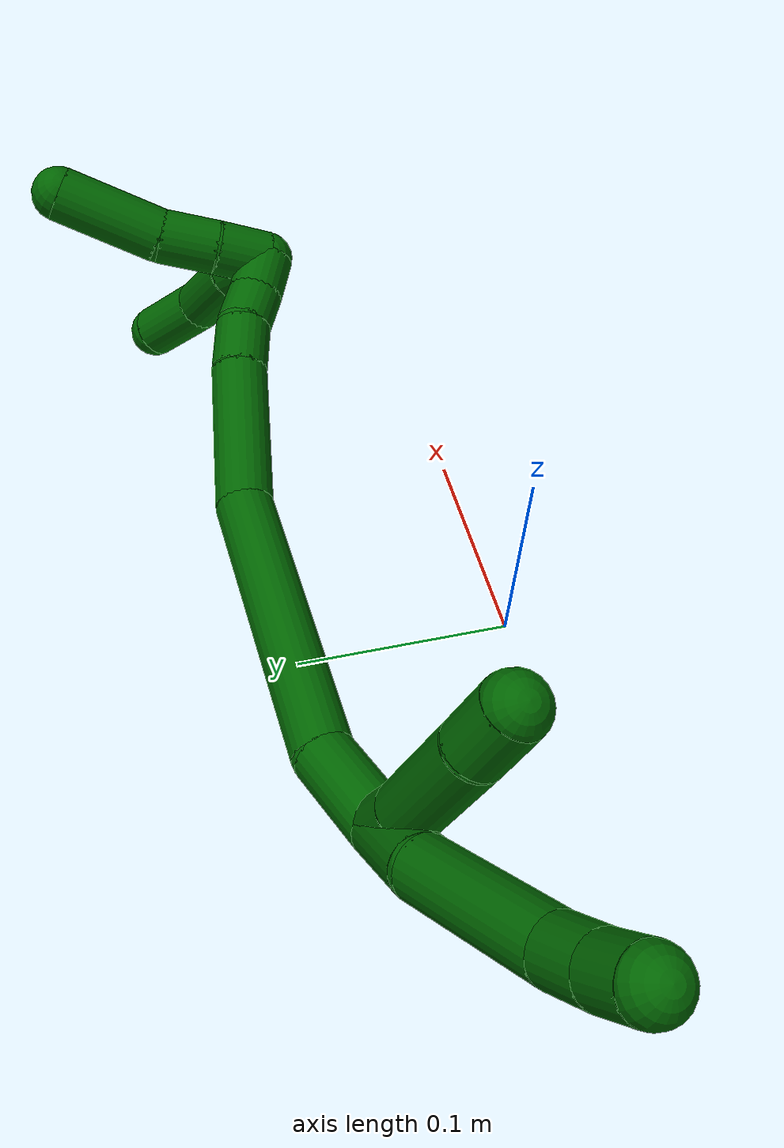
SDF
<sdf version="1.7">
 <world name="default">
  <model name="photoneo_s_sensor">
   <static>1</static>
   <pose>0 0 2 1.57079 1.57079 3.14159</pose>
   <link name="link">
    <inertial><mass>0.1</mass></inertial>
    <sensor name="sensor" type="depth">
     <update_rate>30</update_rate>
     <camera>
      <horizontal_fov>1.22</horizontal_fov>
      <image><width>1920</width><height>1200</height><format>B8G8R8</format></image>
      <clip><near>0.1</near><far>4</far></clip>
      <depth_camera><output>points</output></depth_camera>
     </camera>
     <plugin name="camera_plugin" filename="libgazebo_ros_depth_camera.so">
      <baseline>0.2</baseline>
      <alwaysOn>1</alwaysOn>
      <updateRate>0.0</updateRate>
      <cameraName>camera_ir</cameraName>
      <imageTopicName>/camera/color/image_raw</imageTopicName>
      <cameraInfoTopicName>/camera/color/camera_info</cameraInfoTopicName>
      <depthImageTopicName>/camera/depth/image_raw</depthImageTopicName>
      <depthImageCameraInfoTopicName>/camera/depth/camera_info</depthImageCameraInfoTopicName>
      <pointCloudTopicName>/camera/depth/points</pointCloudTopicName>
      <frameName>fr_optical</frameName>
      <pointCloudCutoff>0.1</pointCloudCutoff>
      <pointCloudCutoffMax>2.0</pointCloudCutoffMax>
      <distortionK1>0</distortionK1>
      <distortionK2>0</distortionK2>
      <distortionK3>0</distortionK3>
      <distortionT1>0</distortionT1>
      <distortionT2>0</distortionT2>
      <CxPrime>0</CxPrime>
      <Cx>0</Cx>
      <Cy>0</Cy>
      <focalLength>0</focalLength>
      <hackBaseline>0</hackBaseline>
     </plugin>
    </sensor>
   </link>
  </model>
  <model name="bin">
   <static>1</static>
   <link name="bottom">
    <collision name="collision-bottom">
     <pose>0 0 -0.01 0 -0 0</pose>
     <geometry><box><size>0.8 0.6 0.02</size></box></geometry>
     <surface>
      <friction><ode><mu>100</mu><mu2>100</mu2></ode></friction>
      <contact><collide_bitmask>65535</collide_bitmask></contact>
     </surface>
    </collision>
   </link>
   <link name="west_wall">
    <collision name="collision-west_wall">
     <pose>-0.41 0 0.1 0 -0 0</pose>
     <geometry><box><size>0.02 0.6 0.2</size></box></geometry>
     <surface>
      <friction><ode><mu>100</mu><mu2>100</mu2></ode></friction>
      <contact><collide_bitmask>65535</collide_bitmask></contact>
     </surface>
    </collision>
   </link>
   <link name="east_wall">
    <collision name="collision-east_wall">
     <pose>0.41 0 0.1 0 -0 0</pose>
     <geometry><box><size>0.02 0.6 0.2</size></box></geometry>
     <surface>
      <friction><ode><mu>100</mu><mu2>100</mu2></ode></friction>
      <contact><collide_bitmask>65535</collide_bitmask></contact>
     </surface>
    </collision>
   </link>
   <link name="south_wall">
    <collision name="collision-south_wall">
     <pose>0 -0.31 0.1 0 -0 0</pose>
     <geometry><box><size>0.8 0.02 0.2</size></box></geometry>
     <surface>
      <friction><ode><mu>100</mu><mu2>100</mu2></ode></friction>
      <contact><collide_bitmask>65535</collide_bitmask></contact>
     </surface>
    </collision>
   </link>
   <link name="north_wall">
    <collision name="collision-north_wall">
     <pose>0 0.31 0.1 0 -0 0</pose>
     <geometry><box><size>0.8 0.02 0.2</size></box></geometry>
     <surface>
      <friction><ode><mu>100</mu><mu2>100</mu2></ode></friction>
      <contact><collide_bitmask>65535</collide_bitmask></contact>
     </surface>
    </collision>
   </link>
  </model>
  <model name="6">
   <static>0</static>
   <link name="6">
    <collision name="collision-cylinder-e_1_2_8">
     <pose>-0.007258 -0.003826 0.017946 0.210061 -0.376678 -0.04018</pose>
     <geometry><cylinder><radius>0.0125</radius><length>0.039466</length></cylinder></geometry>
     <surface>
      <friction><ode><mu>1.16</mu><mu2>1.16</mu2><slip1>0</slip1><slip2>0</slip2></ode></friction>
      <contact><ode><kp>1e+06</kp><kd>1</kd><max_vel>0</max_vel><min_depth>0.001</min_depth></ode></contact>
     </surface>
    </collision>
    <visual name="visual-cylinder-e_1_2_8">
     <pose>-0.007258 -0.003826 0.017946 0.210061 -0.376678 -0.04018</pose>
     <geometry><cylinder><radius>0.0125</radius><length>0.039466</length></cylinder></geometry>
     <material><ambient>0 0.392157 0.003922 1</ambient></material>
    </visual>
    <collision name="collision-cylinder-e_2_8_9">
     <pose>-0.023413 -0.02224 0.064801 0.467307 -0.268117 -0.064175</pose>
     <geometry><cylinder><radius>0.0125</radius><length>0.067161</length></cylinder></geometry>
     <surface>
      <friction><ode><mu>1.16</mu><mu2>1.16</mu2><slip1>0</slip1><slip2>0</slip2></ode></friction>
      <contact><ode><kp>1e+06</kp><kd>1</kd><max_vel>0</max_vel><min_depth>0.001</min_depth></ode></contact>
     </surface>
    </collision>
    <visual name="visual-cylinder-e_2_8_9">
     <pose>-0.023413 -0.02224 0.064801 0.467307 -0.268117 -0.064175</pose>
     <geometry><cylinder><radius>0.0125</radius><length>0.067161</length></cylinder></geometry>
     <material><ambient>0 0.392157 0.003922 1</ambient></material>
    </visual>
    <collision name="collision-cylinder-e_3_9_10">
     <pose>-0.034125 -0.040165 0.104136 0.309867 -0.164434 -0.025739</pose>
     <geometry><cylinder><radius>0.0125</radius><length>0.022193</length></cylinder></geometry>
     <surface>
      <friction><ode><mu>1.16</mu><mu2>1.16</mu2><slip1>0</slip1><slip2>0</slip2></ode></friction>
      <contact><ode><kp>1e+06</kp><kd>1</kd><max_vel>0</max_vel><min_depth>0.001</min_depth></ode></contact>
     </surface>
    </collision>
    <visual name="visual-cylinder-e_3_9_10">
     <pose>-0.034125 -0.040165 0.104136 0.309867 -0.164434 -0.025739</pose>
     <geometry><cylinder><radius>0.0125</radius><length>0.022193</length></cylinder></geometry>
     <material><ambient>0 0.392157 0.003922 1</ambient></material>
    </visual>
    <collision name="collision-cylinder-e_4_10_6">
     <pose>-0.036942 -0.045641 0.124885 0.204223 -0.094631 -0.009704</pose>
     <geometry><cylinder><radius>0.0125</radius><length>0.02118</length></cylinder></geometry>
     <surface>
      <friction><ode><mu>1.16</mu><mu2>1.16</mu2><slip1>0</slip1><slip2>0</slip2></ode></friction>
      <contact><ode><kp>1e+06</kp><kd>1</kd><max_vel>0</max_vel><min_depth>0.001</min_depth></ode></contact>
     </surface>
    </collision>
    <visual name="visual-cylinder-e_4_10_6">
     <pose>-0.036942 -0.045641 0.124885 0.204223 -0.094631 -0.009704</pose>
     <geometry><cylinder><radius>0.0125</radius><length>0.02118</length></cylinder></geometry>
     <material><ambient>0 0.392157 0.003922 1</ambient></material>
    </visual>
    <collision name="collision-cylinder-e_1_2_11">
     <pose>0.002043 -0.000438 0.011178 0.039145 0.180611 0.003545</pose>
     <geometry><cylinder><radius>0.0125</radius><length>0.022742</length></cylinder></geometry>
     <surface>
      <friction><ode><mu>1.16</mu><mu2>1.16</mu2><slip1>0</slip1><slip2>0</slip2></ode></friction>
      <contact><ode><kp>1e+06</kp><kd>1</kd><max_vel>0</max_vel><min_depth>0.001</min_depth></ode></contact>
     </surface>
    </collision>
    <visual name="visual-cylinder-e_1_2_11">
     <pose>0.002043 -0.000438 0.011178 0.039145 0.180611 0.003545</pose>
     <geometry><cylinder><radius>0.0125</radius><length>0.022742</length></cylinder></geometry>
     <material><ambient>0 0.392157 0.003922 1</ambient></material>
    </visual>
    <collision name="collision-cylinder-e_2_11_12">
     <pose>0.012107 -0.001044 0.047137 0.006813 0.313046 0.001075</pose>
     <geometry><cylinder><radius>0.0125</radius><length>0.052098</length></cylinder></geometry>
     <surface>
      <friction><ode><mu>1.16</mu><mu2>1.16</mu2><slip1>0</slip1><slip2>0</slip2></ode></friction>
      <contact><ode><kp>1e+06</kp><kd>1</kd><max_vel>0</max_vel><min_depth>0.001</min_depth></ode></contact>
     </surface>
    </collision>
    <visual name="visual-cylinder-e_2_11_12">
     <pose>0.012107 -0.001044 0.047137 0.006813 0.313046 0.001075</pose>
     <geometry><cylinder><radius>0.0125</radius><length>0.052098</length></cylinder></geometry>
     <material><ambient>0 0.392157 0.003922 1</ambient></material>
    </visual>
    <collision name="collision-cylinder-e_3_12_5">
     <pose>0.025524 -0.001972 0.083259 0.066856 0.44321 0.015068</pose>
     <geometry><cylinder><radius>0.0125</radius><length>0.02516</length></cylinder></geometry>
     <surface>
      <friction><ode><mu>1.16</mu><mu2>1.16</mu2><slip1>0</slip1><slip2>0</slip2></ode></friction>
      <contact><ode><kp>1e+06</kp><kd>1</kd><max_vel>0</max_vel><min_depth>0.001</min_depth></ode></contact>
     </surface>
    </collision>
    <visual name="visual-cylinder-e_3_12_5">
     <pose>0.025524 -0.001972 0.083259 0.066856 0.44321 0.015068</pose>
     <geometry><cylinder><radius>0.0125</radius><length>0.02516</length></cylinder></geometry>
     <material><ambient>0 0.392157 0.003922 1</ambient></material>
    </visual>
    <collision name="collision-cylinder-e_1_2_13">
     <pose>0.010789 0.011985 -0.012105 -2.36116 0.564581 -1.22836</pose>
     <geometry><cylinder><radius>0.0125</radius><length>0.040327</length></cylinder></geometry>
     <surface>
      <friction><ode><mu>1.16</mu><mu2>1.16</mu2><slip1>0</slip1><slip2>0</slip2></ode></friction>
      <contact><ode><kp>1e+06</kp><kd>1</kd><max_vel>0</max_vel><min_depth>0.001</min_depth></ode></contact>
     </surface>
    </collision>
    <visual name="visual-cylinder-e_1_2_13">
     <pose>0.010789 0.011985 -0.012105 -2.36116 0.564581 -1.22836</pose>
     <geometry><cylinder><radius>0.0125</radius><length>0.040327</length></cylinder></geometry>
     <material><ambient>0 0.392157 0.003922 1</ambient></material>
    </visual>
    <collision name="collision-cylinder-e_2_13_14">
     <pose>0.071788 0.052136 -0.052804 -2.36373 0.896449 -1.73003</pose>
     <geometry><cylinder><radius>0.0125</radius><length>0.128562</length></cylinder></geometry>
     <surface>
      <friction><ode><mu>1.16</mu><mu2>1.16</mu2><slip1>0</slip1><slip2>0</slip2></ode></friction>
      <contact><ode><kp>1e+06</kp><kd>1</kd><max_vel>0</max_vel><min_depth>0.001</min_depth></ode></contact>
     </surface>
    </collision>
    <visual name="visual-cylinder-e_2_13_14">
     <pose>0.071788 0.052136 -0.052804 -2.36373 0.896449 -1.73003</pose>
     <geometry><cylinder><radius>0.0125</radius><length>0.128562</length></cylinder></geometry>
     <material><ambient>0 0.392157 0.003922 1</ambient></material>
    </visual>
    <collision name="collision-cylinder-e_3_14_15">
     <pose>0.153178 0.09197 -0.086712 -1.99818 1.18066 -1.61138</pose>
     <geometry><cylinder><radius>0.0125</radius><length>0.067425</length></cylinder></geometry>
     <surface>
      <friction><ode><mu>1.16</mu><mu2>1.16</mu2><slip1>0</slip1><slip2>0</slip2></ode></friction>
      <contact><ode><kp>1e+06</kp><kd>1</kd><max_vel>0</max_vel><min_depth>0.001</min_depth></ode></contact>
     </surface>
    </collision>
    <visual name="visual-cylinder-e_3_14_15">
     <pose>0.153178 0.09197 -0.086712 -1.99818 1.18066 -1.61138</pose>
     <geometry><cylinder><radius>0.0125</radius><length>0.067425</length></cylinder></geometry>
     <material><ambient>0 0.392157 0.003922 1</ambient></material>
    </visual>
    <collision name="collision-cylinder-e_4_15_16">
     <pose>0.195681 0.106502 -0.093856 -2.13944 1.27923 -1.87236</pose>
     <geometry><cylinder><radius>0.0125</radius><length>0.023645</length></cylinder></geometry>
     <surface>
      <friction><ode><mu>1.16</mu><mu2>1.16</mu2><slip1>0</slip1><slip2>0</slip2></ode></friction>
      <contact><ode><kp>1e+06</kp><kd>1</kd><max_vel>0</max_vel><min_depth>0.001</min_depth></ode></contact>
     </surface>
    </collision>
    <visual name="visual-cylinder-e_4_15_16">
     <pose>0.195681 0.106502 -0.093856 -2.13944 1.27923 -1.87236</pose>
     <geometry><cylinder><radius>0.0125</radius><length>0.023645</length></cylinder></geometry>
     <material><ambient>0 0.392157 0.003922 1</ambient></material>
    </visual>
    <collision name="collision-cylinder-e_5_16_17">
     <pose>0.21677 0.109537 -0.097896 -3.06403 1.34758 -3.04448</pose>
     <geometry><cylinder><radius>0.0125</radius><length>0.020027</length></cylinder></geometry>
     <surface>
      <friction><ode><mu>1.16</mu><mu2>1.16</mu2><slip1>0</slip1><slip2>0</slip2></ode></friction>
      <contact><ode><kp>1e+06</kp><kd>1</kd><max_vel>0</max_vel><min_depth>0.001</min_depth></ode></contact>
     </surface>
    </collision>
    <visual name="visual-cylinder-e_5_16_17">
     <pose>0.21677 0.109537 -0.097896 -3.06403 1.34758 -3.04448</pose>
     <geometry><cylinder><radius>0.0125</radius><length>0.020027</length></cylinder></geometry>
     <material><ambient>0 0.392157 0.003922 1</ambient></material>
    </visual>
    <collision name="collision-cylinder-e_6_17_1">
     <pose>0.236496 0.110654 -0.100284 -1.75717 1.47456 -1.66176</pose>
     <geometry><cylinder><radius>0.0125</radius><length>0.020014</length></cylinder></geometry>
     <surface>
      <friction><ode><mu>1.16</mu><mu2>1.16</mu2><slip1>0</slip1><slip2>0</slip2></ode></friction>
      <contact><ode><kp>1e+06</kp><kd>1</kd><max_vel>0</max_vel><min_depth>0.001</min_depth></ode></contact>
     </surface>
    </collision>
    <visual name="visual-cylinder-e_6_17_1">
     <pose>0.236496 0.110654 -0.100284 -1.75717 1.47456 -1.66176</pose>
     <geometry><cylinder><radius>0.0125</radius><length>0.020014</length></cylinder></geometry>
     <material><ambient>0 0.392157 0.003922 1</ambient></material>
    </visual>
    <collision name="collision-cylinder-e_1_1_18">
     <pose>0.243417 0.123237 -0.099688 -1.50441 -0.254905 0.238682</pose>
     <geometry><cylinder><radius>0.0125</radius><length>0.024106</length></cylinder></geometry>
     <surface>
      <friction><ode><mu>1.16</mu><mu2>1.16</mu2><slip1>0</slip1><slip2>0</slip2></ode></friction>
      <contact><ode><kp>1e+06</kp><kd>1</kd><max_vel>0</max_vel><min_depth>0.001</min_depth></ode></contact>
     </surface>
    </collision>
    <visual name="visual-cylinder-e_1_1_18">
     <pose>0.243417 0.123237 -0.099688 -1.50441 -0.254905 0.238682</pose>
     <geometry><cylinder><radius>0.0125</radius><length>0.024106</length></cylinder></geometry>
     <material><ambient>0 0.392157 0.003922 1</ambient></material>
    </visual>
    <collision name="collision-cylinder-e_2_18_19">
     <pose>0.237446 0.147823 -0.099501 -1.61604 -0.222444 0.232654</pose>
     <geometry><cylinder><radius>0.0125</radius><length>0.026577</length></cylinder></geometry>
     <surface>
      <friction><ode><mu>1.16</mu><mu2>1.16</mu2><slip1>0</slip1><slip2>0</slip2></ode></friction>
      <contact><ode><kp>1e+06</kp><kd>1</kd><max_vel>0</max_vel><min_depth>0.001</min_depth></ode></contact>
     </surface>
    </collision>
    <visual name="visual-cylinder-e_2_18_19">
     <pose>0.237446 0.147823 -0.099501 -1.61604 -0.222444 0.232654</pose>
     <geometry><cylinder><radius>0.0125</radius><length>0.026577</length></cylinder></geometry>
     <material><ambient>0 0.392157 0.003922 1</ambient></material>
    </visual>
    <collision name="collision-cylinder-e_3_19_4">
     <pose>0.233388 0.18539 -0.099288 -1.53834 -0.045713 0.044253</pose>
     <geometry><cylinder><radius>0.0125</radius><length>0.049317</length></cylinder></geometry>
     <surface>
      <friction><ode><mu>1.16</mu><mu2>1.16</mu2><slip1>0</slip1><slip2>0</slip2></ode></friction>
      <contact><ode><kp>1e+06</kp><kd>1</kd><max_vel>0</max_vel><min_depth>0.001</min_depth></ode></contact>
     </surface>
    </collision>
    <visual name="visual-cylinder-e_3_19_4">
     <pose>0.233388 0.18539 -0.099288 -1.53834 -0.045713 0.044253</pose>
     <geometry><cylinder><radius>0.0125</radius><length>0.049317</length></cylinder></geometry>
     <material><ambient>0 0.392157 0.003922 1</ambient></material>
    </visual>
    <collision name="collision-cylinder-e_1_1_20">
     <pose>0.245852 0.116974 -0.112706 -2.72793 -0.045157 0.214417</pose>
     <geometry><cylinder><radius>0.0125</radius><length>0.026771</length></cylinder></geometry>
     <surface>
      <friction><ode><mu>1.16</mu><mu2>1.16</mu2><slip1>0</slip1><slip2>0</slip2></ode></friction>
      <contact><ode><kp>1e+06</kp><kd>1</kd><max_vel>0</max_vel><min_depth>0.001</min_depth></ode></contact>
     </surface>
    </collision>
    <visual name="visual-cylinder-e_1_1_20">
     <pose>0.245852 0.116974 -0.112706 -2.72793 -0.045157 0.214417</pose>
     <geometry><cylinder><radius>0.0125</radius><length>0.026771</length></cylinder></geometry>
     <material><ambient>0 0.392157 0.003922 1</ambient></material>
    </visual>
    <collision name="collision-cylinder-e_2_20_21">
     <pose>0.243665 0.126514 -0.143886 -2.92508 -0.081446 0.717376</pose>
     <geometry><cylinder><radius>0.0125</radius><length>0.038906</length></cylinder></geometry>
     <surface>
      <friction><ode><mu>1.16</mu><mu2>1.16</mu2><slip1>0</slip1><slip2>0</slip2></ode></friction>
      <contact><ode><kp>1e+06</kp><kd>1</kd><max_vel>0</max_vel><min_depth>0.001</min_depth></ode></contact>
     </surface>
    </collision>
    <visual name="visual-cylinder-e_2_20_21">
     <pose>0.243665 0.126514 -0.143886 -2.92508 -0.081446 0.717376</pose>
     <geometry><cylinder><radius>0.0125</radius><length>0.038906</length></cylinder></geometry>
     <material><ambient>0 0.392157 0.003922 1</ambient></material>
    </visual>
    <collision name="collision-cylinder-e_3_21_3">
     <pose>0.237249 0.13845 -0.17734 -2.65011 -0.285519 1.0408</pose>
     <geometry><cylinder><radius>0.0125</radius><length>0.034323</length></cylinder></geometry>
     <surface>
      <friction><ode><mu>1.16</mu><mu2>1.16</mu2><slip1>0</slip1><slip2>0</slip2></ode></friction>
      <contact><ode><kp>1e+06</kp><kd>1</kd><max_vel>0</max_vel><min_depth>0.001</min_depth></ode></contact>
     </surface>
    </collision>
    <visual name="visual-cylinder-e_3_21_3">
     <pose>0.237249 0.13845 -0.17734 -2.65011 -0.285519 1.0408</pose>
     <geometry><cylinder><radius>0.0125</radius><length>0.034323</length></cylinder></geometry>
     <material><ambient>0 0.392157 0.003922 1</ambient></material>
    </visual>
    <collision name="collision-sphere-3">
     <pose>0.232415 0.146222 -0.191857 0 -0 0</pose>
     <geometry><sphere><radius>0.0125</radius></sphere></geometry>
     <surface>
      <friction><ode><mu>1.16</mu><mu2>1.16</mu2><slip1>0</slip1><slip2>0</slip2></ode></friction>
      <contact><ode><kp>1e+06</kp><kd>1</kd><max_vel>0</max_vel><min_depth>0.001</min_depth></ode></contact>
     </surface>
    </collision>
    <visual name="visual-sphere-3">
     <pose>0.232415 0.146222 -0.191857 0 -0 0</pose>
     <geometry><sphere><radius>0.0125</radius></sphere></geometry>
     <material><ambient>0 0.392157 0.003922 1</ambient></material>
    </visual>
    <collision name="collision-sphere-21">
     <pose>0.242082 0.130679 -0.162822 0 -0 0</pose>
     <geometry><sphere><radius>0.0125</radius></sphere></geometry>
     <surface>
      <friction><ode><mu>1.16</mu><mu2>1.16</mu2><slip1>0</slip1><slip2>0</slip2></ode></friction>
      <contact><ode><kp>1e+06</kp><kd>1</kd><max_vel>0</max_vel><min_depth>0.001</min_depth></ode></contact>
     </surface>
    </collision>
    <visual name="visual-sphere-21">
     <pose>0.242082 0.130679 -0.162822 0 -0 0</pose>
     <geometry><sphere><radius>0.0125</radius></sphere></geometry>
     <material><ambient>0 0.392157 0.003922 1</ambient></material>
    </visual>
    <collision name="collision-sphere-20">
     <pose>0.245248 0.122349 -0.12495 0 -0 0</pose>
     <geometry><sphere><radius>0.0125</radius></sphere></geometry>
     <surface>
      <friction><ode><mu>1.16</mu><mu2>1.16</mu2><slip1>0</slip1><slip2>0</slip2></ode></friction>
      <contact><ode><kp>1e+06</kp><kd>1</kd><max_vel>0</max_vel><min_depth>0.001</min_depth></ode></contact>
     </surface>
    </collision>
    <visual name="visual-sphere-20">
     <pose>0.245248 0.122349 -0.12495 0 -0 0</pose>
     <geometry><sphere><radius>0.0125</radius></sphere></geometry>
     <material><ambient>0 0.392157 0.003922 1</ambient></material>
    </visual>
    <collision name="collision-sphere-4">
     <pose>0.232261 0.21001 -0.098488 0 -0 0</pose>
     <geometry><sphere><radius>0.0125</radius></sphere></geometry>
     <surface>
      <friction><ode><mu>1.16</mu><mu2>1.16</mu2><slip1>0</slip1><slip2>0</slip2></ode></friction>
      <contact><ode><kp>1e+06</kp><kd>1</kd><max_vel>0</max_vel><min_depth>0.001</min_depth></ode></contact>
     </surface>
    </collision>
    <visual name="visual-sphere-4">
     <pose>0.232261 0.21001 -0.098488 0 -0 0</pose>
     <geometry><sphere><radius>0.0125</radius></sphere></geometry>
     <material><ambient>0 0.392157 0.003922 1</ambient></material>
    </visual>
    <collision name="collision-sphere-11">
     <pose>0.004085 -0.000876 0.022355 0 -0 0</pose>
     <geometry><sphere><radius>0.0125</radius></sphere></geometry>
     <surface>
      <friction><ode><mu>1.16</mu><mu2>1.16</mu2><slip1>0</slip1><slip2>0</slip2></ode></friction>
      <contact><ode><kp>1e+06</kp><kd>1</kd><max_vel>0</max_vel><min_depth>0.001</min_depth></ode></contact>
     </surface>
    </collision>
    <visual name="visual-sphere-11">
     <pose>0.004085 -0.000876 0.022355 0 -0 0</pose>
     <geometry><sphere><radius>0.0125</radius></sphere></geometry>
     <material><ambient>0 0.392157 0.003922 1</ambient></material>
    </visual>
    <collision name="collision-sphere-6">
     <pose>-0.037943 -0.047779 0.135208 0 -0 0</pose>
     <geometry><sphere><radius>0.0125</radius></sphere></geometry>
     <surface>
      <friction><ode><mu>1.16</mu><mu2>1.16</mu2><slip1>0</slip1><slip2>0</slip2></ode></friction>
      <contact><ode><kp>1e+06</kp><kd>1</kd><max_vel>0</max_vel><min_depth>0.001</min_depth></ode></contact>
     </surface>
    </collision>
    <visual name="visual-sphere-6">
     <pose>-0.037943 -0.047779 0.135208 0 -0 0</pose>
     <geometry><sphere><radius>0.0125</radius></sphere></geometry>
     <material><ambient>0 0.392157 0.003922 1</ambient></material>
    </visual>
    <collision name="collision-sphere-10">
     <pose>-0.035942 -0.043503 0.114561 0 -0 0</pose>
     <geometry><sphere><radius>0.0125</radius></sphere></geometry>
     <surface>
      <friction><ode><mu>1.16</mu><mu2>1.16</mu2><slip1>0</slip1><slip2>0</slip2></ode></friction>
      <contact><ode><kp>1e+06</kp><kd>1</kd><max_vel>0</max_vel><min_depth>0.001</min_depth></ode></contact>
     </surface>
    </collision>
    <visual name="visual-sphere-10">
     <pose>-0.035942 -0.043503 0.114561 0 -0 0</pose>
     <geometry><sphere><radius>0.0125</radius></sphere></geometry>
     <material><ambient>0 0.392157 0.003922 1</ambient></material>
    </visual>
    <collision name="collision-sphere-9">
     <pose>-0.032309 -0.036827 0.093711 0 -0 0</pose>
     <geometry><sphere><radius>0.0125</radius></sphere></geometry>
     <surface>
      <friction><ode><mu>1.16</mu><mu2>1.16</mu2><slip1>0</slip1><slip2>0</slip2></ode></friction>
      <contact><ode><kp>1e+06</kp><kd>1</kd><max_vel>0</max_vel><min_depth>0.001</min_depth></ode></contact>
     </surface>
    </collision>
    <visual name="visual-sphere-9">
     <pose>-0.032309 -0.036827 0.093711 0 -0 0</pose>
     <geometry><sphere><radius>0.0125</radius></sphere></geometry>
     <material><ambient>0 0.392157 0.003922 1</ambient></material>
    </visual>
    <collision name="collision-sphere-2">
     <geometry><sphere><radius>0.0125</radius></sphere></geometry>
     <surface>
      <friction><ode><mu>1.16</mu><mu2>1.16</mu2><slip1>0</slip1><slip2>0</slip2></ode></friction>
      <contact><ode><kp>1e+06</kp><kd>1</kd><max_vel>0</max_vel><min_depth>0.001</min_depth></ode></contact>
     </surface>
    </collision>
    <visual name="visual-sphere-2">
     <geometry><sphere><radius>0.0125</radius></sphere></geometry>
     <material><ambient>0 0.392157 0.003922 1</ambient></material>
    </visual>
    <collision name="collision-sphere-19">
     <pose>0.234514 0.160771 -0.100087 0 -0 0</pose>
     <geometry><sphere><radius>0.0125</radius></sphere></geometry>
     <surface>
      <friction><ode><mu>1.16</mu><mu2>1.16</mu2><slip1>0</slip1><slip2>0</slip2></ode></friction>
      <contact><ode><kp>1e+06</kp><kd>1</kd><max_vel>0</max_vel><min_depth>0.001</min_depth></ode></contact>
     </surface>
    </collision>
    <visual name="visual-sphere-19">
     <pose>0.234514 0.160771 -0.100087 0 -0 0</pose>
     <geometry><sphere><radius>0.0125</radius></sphere></geometry>
     <material><ambient>0 0.392157 0.003922 1</ambient></material>
    </visual>
    <collision name="collision-sphere-8">
     <pose>-0.014517 -0.007652 0.035892 0 -0 0</pose>
     <geometry><sphere><radius>0.0125</radius></sphere></geometry>
     <surface>
      <friction><ode><mu>1.16</mu><mu2>1.16</mu2><slip1>0</slip1><slip2>0</slip2></ode></friction>
      <contact><ode><kp>1e+06</kp><kd>1</kd><max_vel>0</max_vel><min_depth>0.001</min_depth></ode></contact>
     </surface>
    </collision>
    <visual name="visual-sphere-8">
     <pose>-0.014517 -0.007652 0.035892 0 -0 0</pose>
     <geometry><sphere><radius>0.0125</radius></sphere></geometry>
     <material><ambient>0 0.392157 0.003922 1</ambient></material>
    </visual>
    <collision name="collision-sphere-12">
     <pose>0.020129 -0.001213 0.07192 0 -0 0</pose>
     <geometry><sphere><radius>0.0125</radius></sphere></geometry>
     <surface>
      <friction><ode><mu>1.16</mu><mu2>1.16</mu2><slip1>0</slip1><slip2>0</slip2></ode></friction>
      <contact><ode><kp>1e+06</kp><kd>1</kd><max_vel>0</max_vel><min_depth>0.001</min_depth></ode></contact>
     </surface>
    </collision>
    <visual name="visual-sphere-12">
     <pose>0.020129 -0.001213 0.07192 0 -0 0</pose>
     <geometry><sphere><radius>0.0125</radius></sphere></geometry>
     <material><ambient>0 0.392157 0.003922 1</ambient></material>
    </visual>
    <collision name="collision-sphere-5">
     <pose>0.030919 -0.002732 0.094598 0 -0 0</pose>
     <geometry><sphere><radius>0.0125</radius></sphere></geometry>
     <surface>
      <friction><ode><mu>1.16</mu><mu2>1.16</mu2><slip1>0</slip1><slip2>0</slip2></ode></friction>
      <contact><ode><kp>1e+06</kp><kd>1</kd><max_vel>0</max_vel><min_depth>0.001</min_depth></ode></contact>
     </surface>
    </collision>
    <visual name="visual-sphere-5">
     <pose>0.030919 -0.002732 0.094598 0 -0 0</pose>
     <geometry><sphere><radius>0.0125</radius></sphere></geometry>
     <material><ambient>0 0.392157 0.003922 1</ambient></material>
    </visual>
    <collision name="collision-sphere-13">
     <pose>0.021578 0.02397 -0.02421 0 -0 0</pose>
     <geometry><sphere><radius>0.0125</radius></sphere></geometry>
     <surface>
      <friction><ode><mu>1.16</mu><mu2>1.16</mu2><slip1>0</slip1><slip2>0</slip2></ode></friction>
      <contact><ode><kp>1e+06</kp><kd>1</kd><max_vel>0</max_vel><min_depth>0.001</min_depth></ode></contact>
     </surface>
    </collision>
    <visual name="visual-sphere-13">
     <pose>0.021578 0.02397 -0.02421 0 -0 0</pose>
     <geometry><sphere><radius>0.0125</radius></sphere></geometry>
     <material><ambient>0 0.392157 0.003922 1</ambient></material>
    </visual>
    <collision name="collision-sphere-14">
     <pose>0.121999 0.080302 -0.081397 0 -0 0</pose>
     <geometry><sphere><radius>0.0125</radius></sphere></geometry>
     <surface>
      <friction><ode><mu>1.16</mu><mu2>1.16</mu2><slip1>0</slip1><slip2>0</slip2></ode></friction>
      <contact><ode><kp>1e+06</kp><kd>1</kd><max_vel>0</max_vel><min_depth>0.001</min_depth></ode></contact>
     </surface>
    </collision>
    <visual name="visual-sphere-14">
     <pose>0.121999 0.080302 -0.081397 0 -0 0</pose>
     <geometry><sphere><radius>0.0125</radius></sphere></geometry>
     <material><ambient>0 0.392157 0.003922 1</ambient></material>
    </visual>
    <collision name="collision-sphere-15">
     <pose>0.184358 0.103638 -0.092026 0 -0 0</pose>
     <geometry><sphere><radius>0.0125</radius></sphere></geometry>
     <surface>
      <friction><ode><mu>1.16</mu><mu2>1.16</mu2><slip1>0</slip1><slip2>0</slip2></ode></friction>
      <contact><ode><kp>1e+06</kp><kd>1</kd><max_vel>0</max_vel><min_depth>0.001</min_depth></ode></contact>
     </surface>
    </collision>
    <visual name="visual-sphere-15">
     <pose>0.184358 0.103638 -0.092026 0 -0 0</pose>
     <geometry><sphere><radius>0.0125</radius></sphere></geometry>
     <material><ambient>0 0.392157 0.003922 1</ambient></material>
    </visual>
    <collision name="collision-sphere-16">
     <pose>0.207005 0.109366 -0.095686 0 -0 0</pose>
     <geometry><sphere><radius>0.0125</radius></sphere></geometry>
     <surface>
      <friction><ode><mu>1.16</mu><mu2>1.16</mu2><slip1>0</slip1><slip2>0</slip2></ode></friction>
      <contact><ode><kp>1e+06</kp><kd>1</kd><max_vel>0</max_vel><min_depth>0.001</min_depth></ode></contact>
     </surface>
    </collision>
    <visual name="visual-sphere-16">
     <pose>0.207005 0.109366 -0.095686 0 -0 0</pose>
     <geometry><sphere><radius>0.0125</radius></sphere></geometry>
     <material><ambient>0 0.392157 0.003922 1</ambient></material>
    </visual>
    <collision name="collision-sphere-17">
     <pose>0.226535 0.109709 -0.100106 0 -0 0</pose>
     <geometry><sphere><radius>0.0125</radius></sphere></geometry>
     <surface>
      <friction><ode><mu>1.16</mu><mu2>1.16</mu2><slip1>0</slip1><slip2>0</slip2></ode></friction>
      <contact><ode><kp>1e+06</kp><kd>1</kd><max_vel>0</max_vel><min_depth>0.001</min_depth></ode></contact>
     </surface>
    </collision>
    <visual name="visual-sphere-17">
     <pose>0.226535 0.109709 -0.100106 0 -0 0</pose>
     <geometry><sphere><radius>0.0125</radius></sphere></geometry>
     <material><ambient>0 0.392157 0.003922 1</ambient></material>
    </visual>
    <collision name="collision-sphere-1">
     <pose>0.246456 0.111599 -0.100462 0 -0 0</pose>
     <geometry><sphere><radius>0.0125</radius></sphere></geometry>
     <surface>
      <friction><ode><mu>1.16</mu><mu2>1.16</mu2><slip1>0</slip1><slip2>0</slip2></ode></friction>
      <contact><ode><kp>1e+06</kp><kd>1</kd><max_vel>0</max_vel><min_depth>0.001</min_depth></ode></contact>
     </surface>
    </collision>
    <visual name="visual-sphere-1">
     <pose>0.246456 0.111599 -0.100462 0 -0 0</pose>
     <geometry><sphere><radius>0.0125</radius></sphere></geometry>
     <material><ambient>0 0.392157 0.003922 1</ambient></material>
    </visual>
    <collision name="collision-sphere-18">
     <pose>0.240378 0.134875 -0.098915 0 -0 0</pose>
     <geometry><sphere><radius>0.0125</radius></sphere></geometry>
     <surface>
      <friction><ode><mu>1.16</mu><mu2>1.16</mu2><slip1>0</slip1><slip2>0</slip2></ode></friction>
      <contact><ode><kp>1e+06</kp><kd>1</kd><max_vel>0</max_vel><min_depth>0.001</min_depth></ode></contact>
     </surface>
    </collision>
    <visual name="visual-sphere-18">
     <pose>0.240378 0.134875 -0.098915 0 -0 0</pose>
     <geometry><sphere><radius>0.0125</radius></sphere></geometry>
     <material><ambient>0 0.392157 0.003922 1</ambient></material>
    </visual>
    <inertial>
     <pose>0.10601 0.060727 -0.038847 0 -0 0</pose>
     <mass>0.75</mass>
     <inertia>
      <ixx>-4.2e-05</ixx>
      <ixy>0</ixy>
      <ixz>0</ixz>
      <iyy>8.8e-05</iyy>
      <iyz>0</iyz>
      <izz>-0.000266</izz>
     </inertia>
    </inertial>
   </link>
   <pose>-0.134278 0.100888 0.09226 0.357128 -0.293871 -0.573938</pose>
  </model>
 </world>
</sdf>
